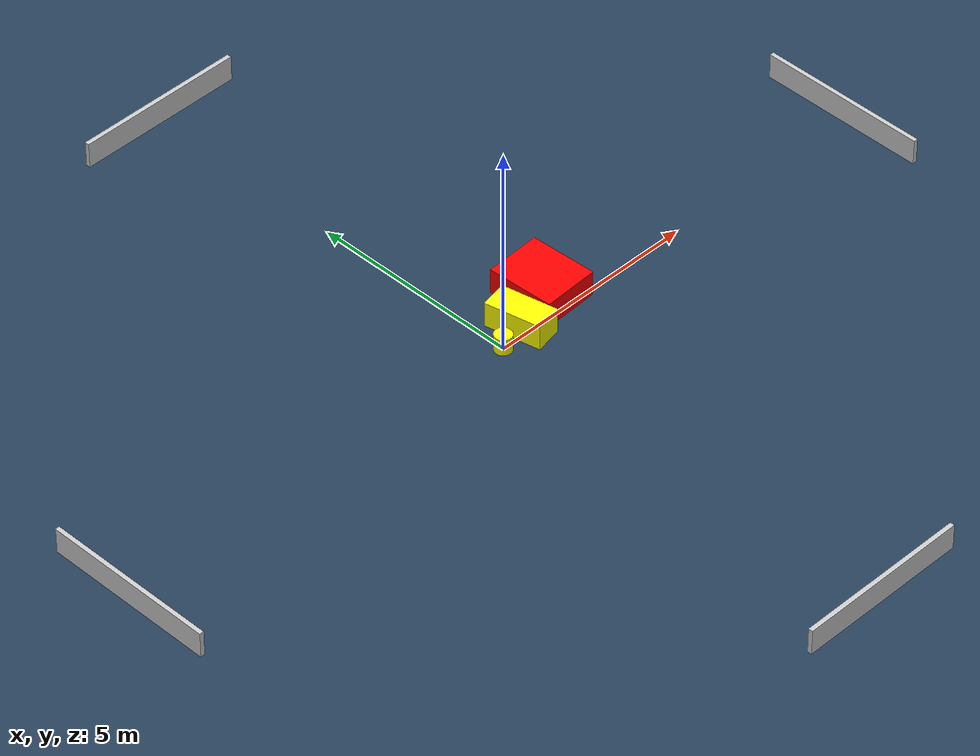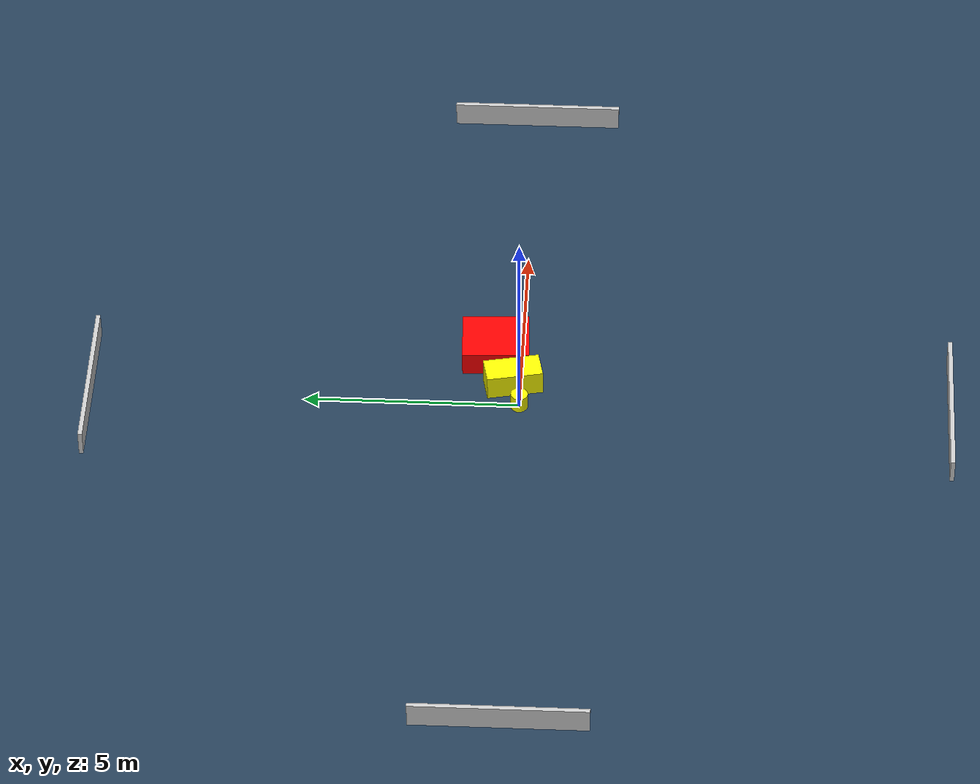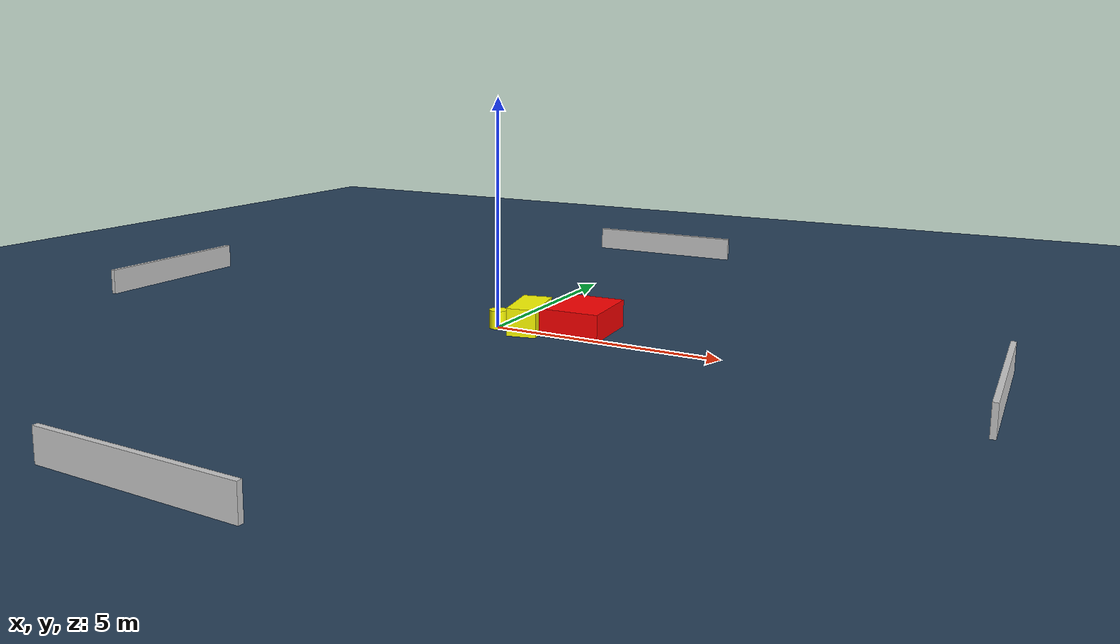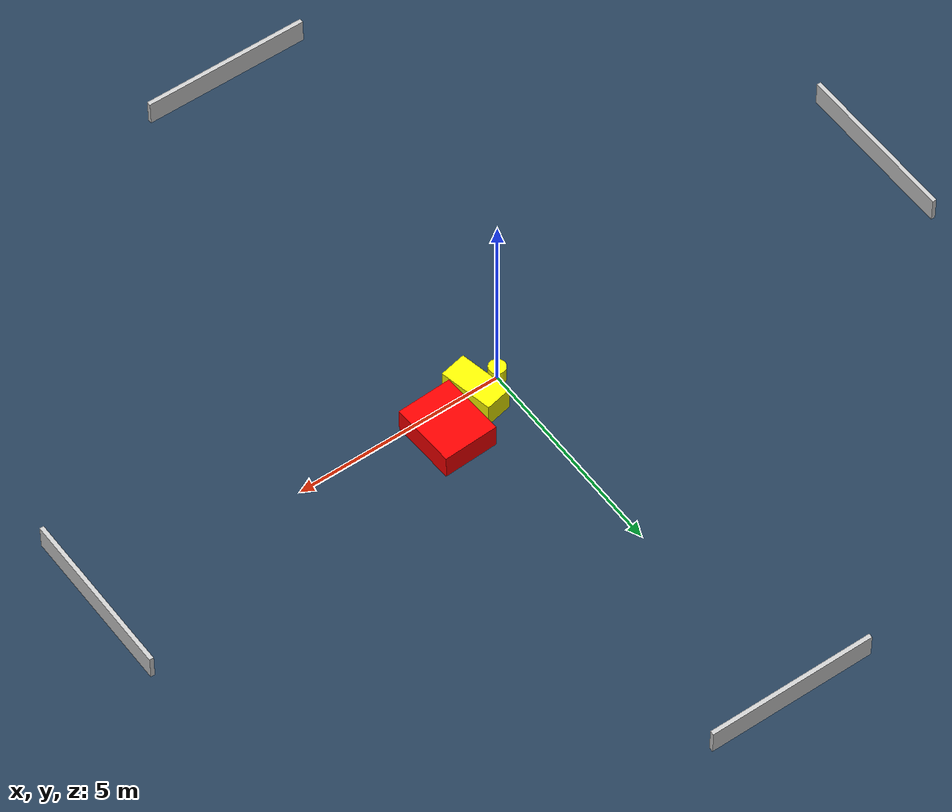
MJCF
<?xml version="1.0" ?>
<mujoco model="generated_environment">
  <option timestep="0.01" integrator="RK4" cone="elliptic"/>
  <default>
    <geom density="1"/>
  </default>
  <asset>
    <texture builtin="gradient" height="3072" name="skybox" rgb1="0.3 0.5 0.7" rgb2="0 0 0" type="skybox" width="512"/>
    <texture builtin="checker" height="300" name="groundplane" rgb1="0.2 0.3 0.4" rgb2="0.1 0.2 0.3" type="2d" width="300"/>
    <material name="groundplane" reflectance="0.2" texrepeat="5 5" texture="groundplane"/>
  </asset>
  <worldbody>
    <light dir="0 0 -1" directional="true" pos="0 0 1.5"/>
    <geom condim="3" friction="0.5 0.005 0.001" material="groundplane" name="floor" pos="0 0 0" size="0 0 0.05" type="plane"/>
    <body name="walls">
      <geom name="wall_1" condim="4" pos="-10.0 0.0 0.3" rgba="0.800000011920929 0.800000011920929 0.800000011920929 1.0" size="0.05 2.0 0.3" type="box"/>
      <geom name="wall_2" condim="4" pos="10.0 0.0 0.3" rgba="0.800000011920929 0.800000011920929 0.800000011920929 1.0" size="0.05 2.0 0.3" type="box"/>
      <geom name="wall_3" condim="4" pos="0.0 -10.0 0.3" rgba="0.800000011920929 0.800000011920929 0.800000011920929 1.0" size="2.0 0.05 0.3" type="box"/>
      <geom name="wall_4" condim="4" pos="0.0 10.0 0.3" rgba="0.800000011920929 0.800000011920929 0.800000011920929 1.0" size="2.0 0.05 0.3" type="box"/>
    </body>
    <body name="robot">
      <joint name="joint_x" type="slide" pos="0 0 0" axis="1 0 0"/>
      <joint name="joint_y" type="slide" pos="0 0 0" axis="0 1 0"/>
      <geom name="robot" type="cylinder" pos="0.0 0.0 0.2" size="0.2 0.2 0.0" mass="5.0" friction="1.0 0.005 0.0001" condim="4" rgba="1.0 1.0 0.0 1.0"/>
    </body>
    <body name="obstacle_1_movable">
      <geom name="obstacle_1_movable" condim="4" pos="0.6793149402303245 0.17616410910464295 0.3" euler="0 0 11.63831621821172" friction="0.0 0.005 0.001" rgba="1.0 1.0 0.0 1.0" size="0.3235641614167956 0.6551748420672501 0.3" type="box" mass="0.1"/>
      <joint type="free"/>
    </body>
    <body name="obstacle_2_static">
      <geom name="obstacle_2_static" condim="4" pos="1.7232854563378792 0.6241574463670305 0.3" euler="0 0 2.7123391805927133" friction="0.0 0.005 0.001" rgba="1.0 0.0 0.0 1.0" size="0.6583559407451802 0.783739291361087 0.3" type="box"/>
    </body>
  </worldbody>
  <actuator>
    <motor name="actuator_x" joint="joint_x" gear="1" ctrlrange="-1 1"/>
    <motor name="actuator_y" joint="joint_y" gear="1" ctrlrange="-1 1"/>
  </actuator>
</mujoco>
